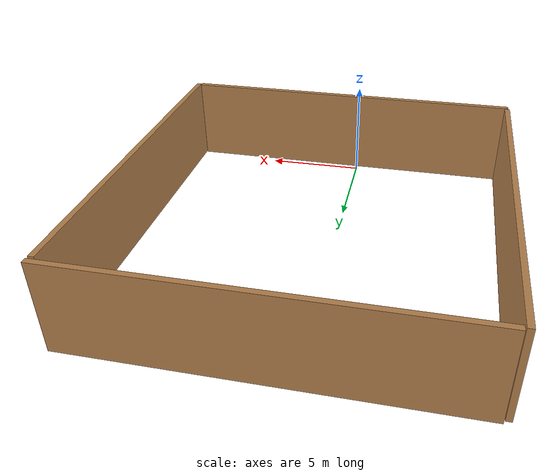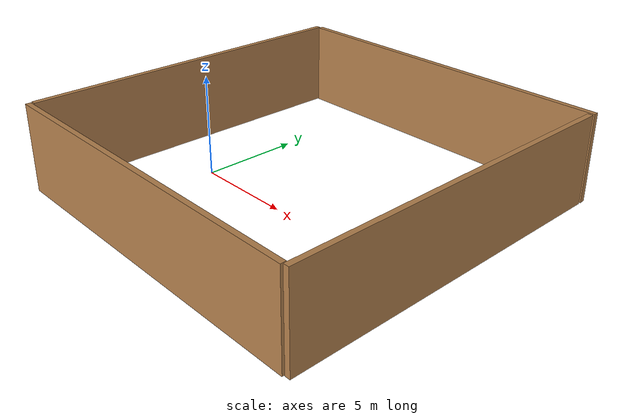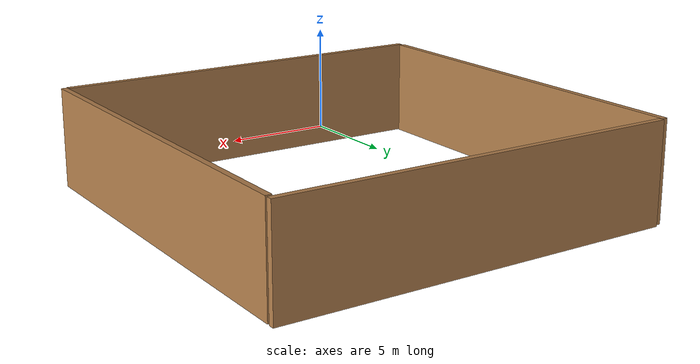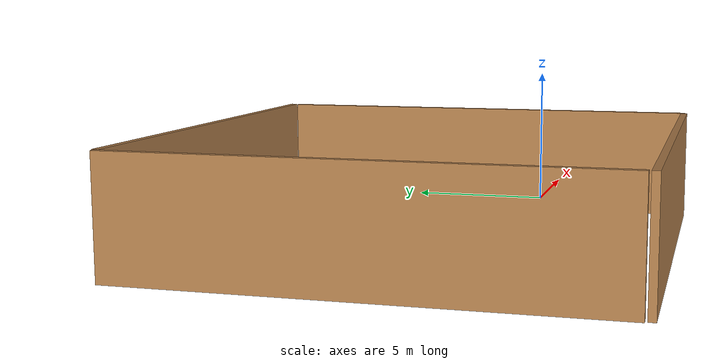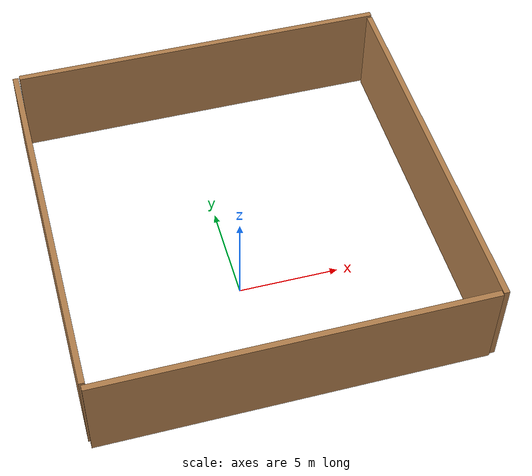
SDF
<?xml version='1.0'?>
<sdf version='1.7'>
  <model name='big_box'>
    <link name='link'>
      <inertial>
        <mass>1</mass>
        <inertia>
          <ixx>0.166667</ixx>
          <ixy>0</ixy>
          <ixz>0</ixz>
          <iyy>0.166667</iyy>
          <iyz>0</iyz>
          <izz>0.166667</izz>
        </inertia>
        <pose>0 0 0 0 -0 0</pose>
      </inertial>
      <self_collide>0</self_collide>
      <enable_wind>0</enable_wind>
      <kinematic>0</kinematic>
      <pose>1.36601 -5.10985 0 0 -0 0</pose>
      <gravity>1</gravity>
      <visual name='visual'>
        <geometry>
          <box>
            <size>20 0.3 5</size>
          </box>
        </geometry>
        <material>
          <script>
            <name>Gazebo/Wood</name>
            <uri>file://media/materials/scripts/gazebo.material</uri>
          </script>
          <shader type='pixel'>
            <normal_map>__default__</normal_map>
          </shader>
          <ambient>0.3 0.3 0.3 1</ambient>
          <diffuse>0.7 0.7 0.7 1</diffuse>
          <specular>0.01 0.01 0.01 1</specular>
          <emissive>0 0 0 1</emissive>
        </material>
        <pose>0 0 0 0 -0 0</pose>
        <transparency>0</transparency>
        <cast_shadows>1</cast_shadows>
      </visual>
      <collision name='collision'>
        <laser_retro>0</laser_retro>
        <max_contacts>10</max_contacts>
        <pose>0 0 0 0 -0 0</pose>
        <geometry>
          <box>
            <size>20 0.3 5</size>
          </box>
        </geometry>
        <surface>
          <friction>
            <ode>
              <mu>1</mu>
              <mu2>1</mu2>
              <fdir1>0 0 0</fdir1>
              <slip1>0</slip1>
              <slip2>0</slip2>
            </ode>
            <torsional>
              <coefficient>1</coefficient>
              <patch_radius>0</patch_radius>
              <surface_radius>0</surface_radius>
              <use_patch_radius>1</use_patch_radius>
              <ode>
                <slip>0</slip>
              </ode>
            </torsional>
          </friction>
          <bounce>
            <restitution_coefficient>0</restitution_coefficient>
            <threshold>1e+06</threshold>
          </bounce>
          <contact>
            <collide_without_contact>0</collide_without_contact>
            <collide_without_contact_bitmask>1</collide_without_contact_bitmask>
            <collide_bitmask>1</collide_bitmask>
            <ode>
              <soft_cfm>0</soft_cfm>
              <soft_erp>0.2</soft_erp>
              <kp>1e+13</kp>
              <kd>1</kd>
              <max_vel>0.01</max_vel>
              <min_depth>0</min_depth>
            </ode>
            <bullet>
              <split_impulse>1</split_impulse>
              <split_impulse_penetration_threshold>-0.01</split_impulse_penetration_threshold>
              <soft_cfm>0</soft_cfm>
              <soft_erp>0.2</soft_erp>
              <kp>1e+13</kp>
              <kd>1</kd>
            </bullet>
          </contact>
        </surface>
      </collision>
    </link>
    <link name='link_clone'>
      <inertial>
        <mass>1</mass>
        <inertia>
          <ixx>0.166667</ixx>
          <ixy>0</ixy>
          <ixz>0</ixz>
          <iyy>0.166667</iyy>
          <iyz>0</iyz>
          <izz>0.166667</izz>
        </inertia>
        <pose>0 0 0 0 -0 0</pose>
      </inertial>
      <self_collide>0</self_collide>
      <enable_wind>0</enable_wind>
      <kinematic>0</kinematic>
      <pose>1.71806 15.1288 -0 0 -0 0</pose>
      <gravity>1</gravity>
      <visual name='visual'>
        <geometry>
          <box>
            <size>20 0.3 5</size>
          </box>
        </geometry>
        <material>
          <script>
            <name>Gazebo/Wood</name>
            <uri>file://media/materials/scripts/gazebo.material</uri>
          </script>
          <shader type='pixel'>
            <normal_map>__default__</normal_map>
          </shader>
          <ambient>0.3 0.3 0.3 1</ambient>
          <diffuse>0.7 0.7 0.7 1</diffuse>
          <specular>0.01 0.01 0.01 1</specular>
          <emissive>0 0 0 1</emissive>
        </material>
        <pose>0 0 0 0 -0 0</pose>
        <transparency>0</transparency>
        <cast_shadows>1</cast_shadows>
      </visual>
      <collision name='collision'>
        <laser_retro>0</laser_retro>
        <max_contacts>10</max_contacts>
        <pose>0 0 0 0 -0 0</pose>
        <geometry>
          <box>
            <size>20 0.3 5</size>
          </box>
        </geometry>
        <surface>
          <friction>
            <ode>
              <mu>1</mu>
              <mu2>1</mu2>
              <fdir1>0 0 0</fdir1>
              <slip1>0</slip1>
              <slip2>0</slip2>
            </ode>
            <torsional>
              <coefficient>1</coefficient>
              <patch_radius>0</patch_radius>
              <surface_radius>0</surface_radius>
              <use_patch_radius>1</use_patch_radius>
              <ode>
                <slip>0</slip>
              </ode>
            </torsional>
          </friction>
          <bounce>
            <restitution_coefficient>0</restitution_coefficient>
            <threshold>1e+06</threshold>
          </bounce>
          <contact>
            <collide_without_contact>0</collide_without_contact>
            <collide_without_contact_bitmask>1</collide_without_contact_bitmask>
            <collide_bitmask>1</collide_bitmask>
            <ode>
              <soft_cfm>0</soft_cfm>
              <soft_erp>0.2</soft_erp>
              <kp>1e+13</kp>
              <kd>1</kd>
              <max_vel>0.01</max_vel>
              <min_depth>0</min_depth>
            </ode>
            <bullet>
              <split_impulse>1</split_impulse>
              <split_impulse_penetration_threshold>-0.01</split_impulse_penetration_threshold>
              <soft_cfm>0</soft_cfm>
              <soft_erp>0.2</soft_erp>
              <kp>1e+13</kp>
              <kd>1</kd>
            </bullet>
          </contact>
        </surface>
      </collision>
    </link>
    <link name='link_clone_clone'>
      <inertial>
        <mass>1</mass>
        <inertia>
          <ixx>0.166667</ixx>
          <ixy>0</ixy>
          <ixz>0</ixz>
          <iyy>0.166667</iyy>
          <iyz>0</iyz>
          <izz>0.166667</izz>
        </inertia>
        <pose>0 0 0 0 -0 0</pose>
      </inertial>
      <self_collide>0</self_collide>
      <enable_wind>0</enable_wind>
      <kinematic>0</kinematic>
      <pose>-8.53285 5.12541 -0 -0 -0 -1.57475</pose>
      <gravity>1</gravity>
      <visual name='visual'>
        <geometry>
          <box>
            <size>20 0.3 5</size>
          </box>
        </geometry>
        <material>
          <script>
            <name>Gazebo/Wood</name>
            <uri>file://media/materials/scripts/gazebo.material</uri>
          </script>
          <shader type='pixel'>
            <normal_map>__default__</normal_map>
          </shader>
          <ambient>0.3 0.3 0.3 1</ambient>
          <diffuse>0.7 0.7 0.7 1</diffuse>
          <specular>0.01 0.01 0.01 1</specular>
          <emissive>0 0 0 1</emissive>
        </material>
        <pose>0 0 0 0 -0 0</pose>
        <transparency>0</transparency>
        <cast_shadows>1</cast_shadows>
      </visual>
      <collision name='collision'>
        <laser_retro>0</laser_retro>
        <max_contacts>10</max_contacts>
        <pose>0 0 0 0 -0 0</pose>
        <geometry>
          <box>
            <size>20 0.3 5</size>
          </box>
        </geometry>
        <surface>
          <friction>
            <ode>
              <mu>1</mu>
              <mu2>1</mu2>
              <fdir1>0 0 0</fdir1>
              <slip1>0</slip1>
              <slip2>0</slip2>
            </ode>
            <torsional>
              <coefficient>1</coefficient>
              <patch_radius>0</patch_radius>
              <surface_radius>0</surface_radius>
              <use_patch_radius>1</use_patch_radius>
              <ode>
                <slip>0</slip>
              </ode>
            </torsional>
          </friction>
          <bounce>
            <restitution_coefficient>0</restitution_coefficient>
            <threshold>1e+06</threshold>
          </bounce>
          <contact>
            <collide_without_contact>0</collide_without_contact>
            <collide_without_contact_bitmask>1</collide_without_contact_bitmask>
            <collide_bitmask>1</collide_bitmask>
            <ode>
              <soft_cfm>0</soft_cfm>
              <soft_erp>0.2</soft_erp>
              <kp>1e+13</kp>
              <kd>1</kd>
              <max_vel>0.01</max_vel>
              <min_depth>0</min_depth>
            </ode>
            <bullet>
              <split_impulse>1</split_impulse>
              <split_impulse_penetration_threshold>-0.01</split_impulse_penetration_threshold>
              <soft_cfm>0</soft_cfm>
              <soft_erp>0.2</soft_erp>
              <kp>1e+13</kp>
              <kd>1</kd>
            </bullet>
          </contact>
        </surface>
      </collision>
    </link>
    <link name='link_clone_clone_0'>
      <inertial>
        <mass>1</mass>
        <inertia>
          <ixx>0.166667</ixx>
          <ixy>0</ixy>
          <ixz>0</ixz>
          <iyy>0.166667</iyy>
          <iyz>0</iyz>
          <izz>0.166667</izz>
        </inertia>
        <pose>0 0 0 0 -0 0</pose>
      </inertial>
      <self_collide>0</self_collide>
      <enable_wind>0</enable_wind>
      <kinematic>0</kinematic>
      <pose>11.558 4.84336 -0 -0 -0 -1.5711</pose>
      <gravity>1</gravity>
      <visual name='visual'>
        <geometry>
          <box>
            <size>20 0.3 5</size>
          </box>
        </geometry>
        <material>
          <script>
            <name>Gazebo/Wood</name>
            <uri>file://media/materials/scripts/gazebo.material</uri>
          </script>
          <shader type='pixel'>
            <normal_map>__default__</normal_map>
          </shader>
          <ambient>0.3 0.3 0.3 1</ambient>
          <diffuse>0.7 0.7 0.7 1</diffuse>
          <specular>0.01 0.01 0.01 1</specular>
          <emissive>0 0 0 1</emissive>
        </material>
        <pose>0 0 0 0 -0 0</pose>
        <transparency>0</transparency>
        <cast_shadows>1</cast_shadows>
      </visual>
      <collision name='collision'>
        <laser_retro>0</laser_retro>
        <max_contacts>10</max_contacts>
        <pose>0 0 0 0 -0 0</pose>
        <geometry>
          <box>
            <size>20 0.3 5</size>
          </box>
        </geometry>
        <surface>
          <friction>
            <ode>
              <mu>1</mu>
              <mu2>1</mu2>
              <fdir1>0 0 0</fdir1>
              <slip1>0</slip1>
              <slip2>0</slip2>
            </ode>
            <torsional>
              <coefficient>1</coefficient>
              <patch_radius>0</patch_radius>
              <surface_radius>0</surface_radius>
              <use_patch_radius>1</use_patch_radius>
              <ode>
                <slip>0</slip>
              </ode>
            </torsional>
          </friction>
          <bounce>
            <restitution_coefficient>0</restitution_coefficient>
            <threshold>1e+06</threshold>
          </bounce>
          <contact>
            <collide_without_contact>0</collide_without_contact>
            <collide_without_contact_bitmask>1</collide_without_contact_bitmask>
            <collide_bitmask>1</collide_bitmask>
            <ode>
              <soft_cfm>0</soft_cfm>
              <soft_erp>0.2</soft_erp>
              <kp>1e+13</kp>
              <kd>1</kd>
              <max_vel>0.01</max_vel>
              <min_depth>0</min_depth>
            </ode>
            <bullet>
              <split_impulse>1</split_impulse>
              <split_impulse_penetration_threshold>-0.01</split_impulse_penetration_threshold>
              <soft_cfm>0</soft_cfm>
              <soft_erp>0.2</soft_erp>
              <kp>1e+13</kp>
              <kd>1</kd>
            </bullet>
          </contact>
        </surface>
      </collision>
    </link>
    <static>0</static>
    <allow_auto_disable>1</allow_auto_disable>
  </model>
</sdf>
